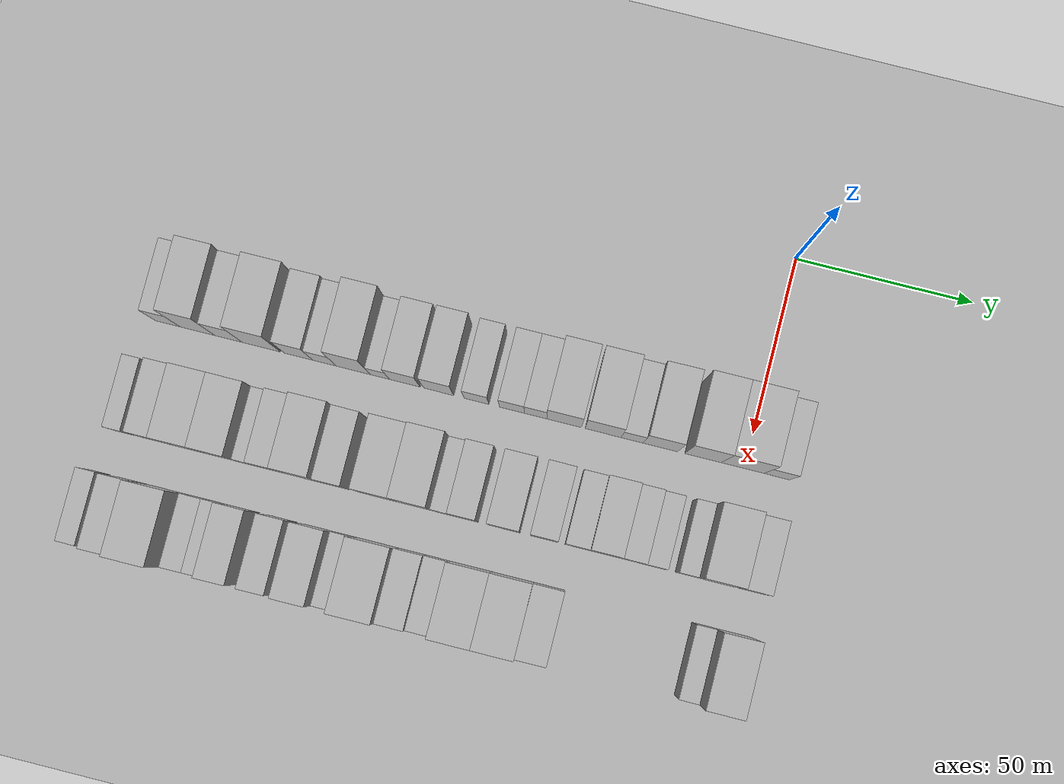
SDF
<sdf version="1.6">
 <world name="default">
  <include><name>ground_plane_1</name><uri>model://HANNAS_ground_plane</uri></include>
  <include>
   <name>ground_plane_2</name>
   <uri>model://HANNAS_ground_plane</uri>
   <pose>100 0 0  0 0 0</pose>
  </include>
  <model name="building_20">
   <static>1</static>
   <pose>50.0000 -163.0944 0 0.000000 0.000000 0.000000</pose>
   <link name="link">
    <pose>0 0 7.50 0 0 0</pose>
    <collision name="collision"><geometry><box><size>20.0000 7.1122 15.0000</size></box></geometry></collision>
    <visual name="visual">
     <cast_shadows>0</cast_shadows>
     <geometry><box><size>20.0000 7.1122 15.0000</size></box></geometry>
     <material>
      <script>
       <uri>model://HANNAS_wall/materials/scripts</uri>
       <uri>model://HANNAS_wall/materials/textures</uri>
       <name>vrc/HANNAS_wall</name>
      </script>
     </material>
    </visual>
   </link>
  </model>
  <model name="building_21">
   <static>1</static>
   <pose>50.0000 -154.5888 0 0.000000 0.000000 0.000000</pose>
   <link name="link">
    <pose>0 0 12.00 0 0 0</pose>
    <collision name="collision"><geometry><box><size>20.0000 9.8990 24.0000</size></box></geometry></collision>
    <visual name="visual">
     <cast_shadows>0</cast_shadows>
     <geometry><box><size>20.0000 9.8990 24.0000</size></box></geometry>
     <material>
      <script>
       <uri>model://HANNAS_wall/materials/scripts</uri>
       <uri>model://HANNAS_wall/materials/textures</uri>
       <name>vrc/HANNAS_wall</name>
      </script>
     </material>
    </visual>
   </link>
  </model>
  <model name="building_22">
   <static>1</static>
   <pose>50.0000 -145.7446 0 0.000000 0.000000 0.000000</pose>
   <link name="link">
    <pose>0 0 9.00 0 0 0</pose>
    <collision name="collision"><geometry><box><size>20.0000 7.7892 18.0000</size></box></geometry></collision>
    <visual name="visual">
     <cast_shadows>0</cast_shadows>
     <geometry><box><size>20.0000 7.7892 18.0000</size></box></geometry>
     <material>
      <script>
       <uri>model://HANNAS_wall/materials/scripts</uri>
       <uri>model://HANNAS_wall/materials/textures</uri>
       <name>vrc/HANNAS_wall</name>
      </script>
     </material>
    </visual>
   </link>
  </model>
  <model name="building_23">
   <static>1</static>
   <pose>50.0000 -136.4296 0 0.000000 0.000000 0.000000</pose>
   <link name="link">
    <pose>0 0 12.00 0 0 0</pose>
    <collision name="collision"><geometry><box><size>20.0000 10.8409 24.0000</size></box></geometry></collision>
    <visual name="visual">
     <cast_shadows>0</cast_shadows>
     <geometry><box><size>20.0000 10.8409 24.0000</size></box></geometry>
     <material>
      <script>
       <uri>model://HANNAS_wall/materials/scripts</uri>
       <uri>model://HANNAS_wall/materials/textures</uri>
       <name>vrc/HANNAS_wall</name>
      </script>
     </material>
    </visual>
   </link>
  </model>
  <model name="building_24">
   <static>1</static>
   <pose>50.0000 -125.9622 0 0.000000 0.000000 0.000000</pose>
   <link name="link">
    <pose>0 0 9.00 0 0 0</pose>
    <collision name="collision"><geometry><box><size>20.0000 8.0939 18.0000</size></box></geometry></collision>
    <visual name="visual">
     <cast_shadows>0</cast_shadows>
     <geometry><box><size>20.0000 8.0939 18.0000</size></box></geometry>
     <material>
      <script>
       <uri>model://HANNAS_wall/materials/scripts</uri>
       <uri>model://HANNAS_wall/materials/textures</uri>
       <name>vrc/HANNAS_wall</name>
      </script>
     </material>
    </visual>
   </link>
  </model>
  <model name="building_25">
   <static>1</static>
   <pose>50.0000 -118.5604 0 0.000000 0.000000 0.000000</pose>
   <link name="link">
    <pose>0 0 7.50 0 0 0</pose>
    <collision name="collision"><geometry><box><size>20.0000 6.7097 15.0000</size></box></geometry></collision>
    <visual name="visual">
     <cast_shadows>0</cast_shadows>
     <geometry><box><size>20.0000 6.7097 15.0000</size></box></geometry>
     <material>
      <script>
       <uri>model://HANNAS_wall/materials/scripts</uri>
       <uri>model://HANNAS_wall/materials/textures</uri>
       <name>vrc/HANNAS_wall</name>
      </script>
     </material>
    </visual>
   </link>
  </model>
  <model name="building_26">
   <static>1</static>
   <pose>50.0000 -110.4016 0 0.000000 0.000000 0.000000</pose>
   <link name="link">
    <pose>0 0 12.00 0 0 0</pose>
    <collision name="collision"><geometry><box><size>20.0000 9.6079 24.0000</size></box></geometry></collision>
    <visual name="visual">
     <cast_shadows>0</cast_shadows>
     <geometry><box><size>20.0000 9.6079 24.0000</size></box></geometry>
     <material>
      <script>
       <uri>model://HANNAS_wall/materials/scripts</uri>
       <uri>model://HANNAS_wall/materials/textures</uri>
       <name>vrc/HANNAS_wall</name>
      </script>
     </material>
    </visual>
   </link>
  </model>
  <model name="building_27">
   <static>1</static>
   <pose>50.0000 -102.8673 0 0.000000 0.000000 0.000000</pose>
   <link name="link">
    <pose>0 0 6.00 0 0 0</pose>
    <collision name="collision"><geometry><box><size>20.0000 5.4606 12.0000</size></box></geometry></collision>
    <visual name="visual">
     <cast_shadows>0</cast_shadows>
     <geometry><box><size>20.0000 5.4606 12.0000</size></box></geometry>
     <material>
      <script>
       <uri>model://HANNAS_wall/materials/scripts</uri>
       <uri>model://HANNAS_wall/materials/textures</uri>
       <name>vrc/HANNAS_wall</name>
      </script>
     </material>
    </visual>
   </link>
  </model>
  <model name="building_28">
   <static>1</static>
   <pose>50.0000 -95.7988 0 0.000000 0.000000 0.000000</pose>
   <link name="link">
    <pose>0 0 9.00 0 0 0</pose>
    <collision name="collision"><geometry><box><size>20.0000 8.6765 18.0000</size></box></geometry></collision>
    <visual name="visual">
     <cast_shadows>0</cast_shadows>
     <geometry><box><size>20.0000 8.6765 18.0000</size></box></geometry>
     <material>
      <script>
       <uri>model://HANNAS_wall/materials/scripts</uri>
       <uri>model://HANNAS_wall/materials/textures</uri>
       <name>vrc/HANNAS_wall</name>
      </script>
     </material>
    </visual>
   </link>
  </model>
  <model name="building_29">
   <static>1</static>
   <pose>50.0000 -86.2173 0 0.000000 0.000000 0.000000</pose>
   <link name="link">
    <pose>0 0 9.00 0 0 0</pose>
    <collision name="collision"><geometry><box><size>20.0000 8.4864 18.0000</size></box></geometry></collision>
    <visual name="visual">
     <cast_shadows>0</cast_shadows>
     <geometry><box><size>20.0000 8.4864 18.0000</size></box></geometry>
     <material>
      <script>
       <uri>model://HANNAS_wall/materials/scripts</uri>
       <uri>model://HANNAS_wall/materials/textures</uri>
       <name>vrc/HANNAS_wall</name>
      </script>
     </material>
    </visual>
   </link>
  </model>
  <model name="building_30">
   <static>1</static>
   <pose>50.0000 -75.5084 0 0.000000 0.000000 0.000000</pose>
   <link name="link">
    <pose>0 0 7.50 0 0 0</pose>
    <collision name="collision"><geometry><box><size>20.0000 6.9314 15.0000</size></box></geometry></collision>
    <visual name="visual">
     <cast_shadows>0</cast_shadows>
     <geometry><box><size>20.0000 6.9314 15.0000</size></box></geometry>
     <material>
      <script>
       <uri>model://HANNAS_wall/materials/scripts</uri>
       <uri>model://HANNAS_wall/materials/textures</uri>
       <name>vrc/HANNAS_wall</name>
      </script>
     </material>
    </visual>
   </link>
  </model>
  <model name="building_31">
   <static>1</static>
   <pose>50.0000 -65.5238 0 0.000000 0.000000 0.000000</pose>
   <link name="link">
    <pose>0 0 7.50 0 0 0</pose>
    <collision name="collision"><geometry><box><size>20.0000 7.0378 15.0000</size></box></geometry></collision>
    <visual name="visual">
     <cast_shadows>0</cast_shadows>
     <geometry><box><size>20.0000 7.0378 15.0000</size></box></geometry>
     <material>
      <script>
       <uri>model://HANNAS_wall/materials/scripts</uri>
       <uri>model://HANNAS_wall/materials/textures</uri>
       <name>vrc/HANNAS_wall</name>
      </script>
     </material>
    </visual>
   </link>
  </model>
  <model name="building_32">
   <static>1</static>
   <pose>50.0000 -58.8244 0 0.000000 0.000000 0.000000</pose>
   <link name="link">
    <pose>0 0 7.50 0 0 0</pose>
    <collision name="collision"><geometry><box><size>20.0000 6.3609 15.0000</size></box></geometry></collision>
    <visual name="visual">
     <cast_shadows>0</cast_shadows>
     <geometry><box><size>20.0000 6.3609 15.0000</size></box></geometry>
     <material>
      <script>
       <uri>model://HANNAS_wall/materials/scripts</uri>
       <uri>model://HANNAS_wall/materials/textures</uri>
       <name>vrc/HANNAS_wall</name>
      </script>
     </material>
    </visual>
   </link>
  </model>
  <model name="building_33">
   <static>1</static>
   <pose>50.0000 -50.7950 0 0.000000 0.000000 0.000000</pose>
   <link name="link">
    <pose>0 0 10.50 0 0 0</pose>
    <collision name="collision"><geometry><box><size>20.0000 9.6981 21.0000</size></box></geometry></collision>
    <visual name="visual">
     <cast_shadows>0</cast_shadows>
     <geometry><box><size>20.0000 9.6981 21.0000</size></box></geometry>
     <material>
      <script>
       <uri>model://HANNAS_wall/materials/scripts</uri>
       <uri>model://HANNAS_wall/materials/textures</uri>
       <name>vrc/HANNAS_wall</name>
      </script>
     </material>
    </visual>
   </link>
  </model>
  <model name="building_34">
   <static>1</static>
   <pose>50.0000 -39.8899 0 0.000000 0.000000 0.000000</pose>
   <link name="link">
    <pose>0 0 10.50 0 0 0</pose>
    <collision name="collision"><geometry><box><size>20.0000 10.1120 21.0000</size></box></geometry></collision>
    <visual name="visual">
     <cast_shadows>0</cast_shadows>
     <geometry><box><size>20.0000 10.1120 21.0000</size></box></geometry>
     <material>
      <script>
       <uri>model://HANNAS_wall/materials/scripts</uri>
       <uri>model://HANNAS_wall/materials/textures</uri>
       <name>vrc/HANNAS_wall</name>
      </script>
     </material>
    </visual>
   </link>
  </model>
  <model name="building_35">
   <static>1</static>
   <pose>50.0000 -31.7334 0 0.000000 0.000000 0.000000</pose>
   <link name="link">
    <pose>0 0 7.50 0 0 0</pose>
    <collision name="collision"><geometry><box><size>20.0000 6.2009 15.0000</size></box></geometry></collision>
    <visual name="visual">
     <cast_shadows>0</cast_shadows>
     <geometry><box><size>20.0000 6.2009 15.0000</size></box></geometry>
     <material>
      <script>
       <uri>model://HANNAS_wall/materials/scripts</uri>
       <uri>model://HANNAS_wall/materials/textures</uri>
       <name>vrc/HANNAS_wall</name>
      </script>
     </material>
    </visual>
   </link>
  </model>
  <model name="building_36">
   <static>1</static>
   <pose>50.0000 -23.7923 0 0.000000 0.000000 0.000000</pose>
   <link name="link">
    <pose>0 0 10.50 0 0 0</pose>
    <collision name="collision"><geometry><box><size>20.0000 9.6813 21.0000</size></box></geometry></collision>
    <visual name="visual">
     <cast_shadows>0</cast_shadows>
     <geometry><box><size>20.0000 9.6813 21.0000</size></box></geometry>
     <material>
      <script>
       <uri>model://HANNAS_wall/materials/scripts</uri>
       <uri>model://HANNAS_wall/materials/textures</uri>
       <name>vrc/HANNAS_wall</name>
      </script>
     </material>
    </visual>
   </link>
  </model>
  <model name="building_37">
   <static>1</static>
   <pose>50.0000 -11.8276 0 0.000000 0.000000 0.000000</pose>
   <link name="link">
    <pose>0 0 12.00 0 0 0</pose>
    <collision name="collision"><geometry><box><size>20.0000 10.2482 24.0000</size></box></geometry></collision>
    <visual name="visual">
     <cast_shadows>0</cast_shadows>
     <geometry><box><size>20.0000 10.2482 24.0000</size></box></geometry>
     <material>
      <script>
       <uri>model://HANNAS_wall/materials/scripts</uri>
       <uri>model://HANNAS_wall/materials/textures</uri>
       <name>vrc/HANNAS_wall</name>
      </script>
     </material>
    </visual>
   </link>
  </model>
  <model name="building_38">
   <static>1</static>
   <pose>50.0000 -0.7172 0 0.000000 0.000000 0.000000</pose>
   <link name="link">
    <pose>0 0 12.00 0 0 0</pose>
    <collision name="collision"><geometry><box><size>20.0000 11.9725 24.0000</size></box></geometry></collision>
    <visual name="visual">
     <cast_shadows>0</cast_shadows>
     <geometry><box><size>20.0000 11.9725 24.0000</size></box></geometry>
     <material>
      <script>
       <uri>model://HANNAS_wall/materials/scripts</uri>
       <uri>model://HANNAS_wall/materials/textures</uri>
       <name>vrc/HANNAS_wall</name>
      </script>
     </material>
    </visual>
   </link>
  </model>
  <model name="building_39">
   <static>1</static>
   <pose>50.0000 8.8545 0 0.000000 0.000000 0.000000</pose>
   <link name="link">
    <pose>0 0 7.50 0 0 0</pose>
    <collision name="collision"><geometry><box><size>20.0000 7.1708 15.0000</size></box></geometry></collision>
    <visual name="visual">
     <cast_shadows>0</cast_shadows>
     <geometry><box><size>20.0000 7.1708 15.0000</size></box></geometry>
     <material>
      <script>
       <uri>model://HANNAS_wall/materials/scripts</uri>
       <uri>model://HANNAS_wall/materials/textures</uri>
       <name>vrc/HANNAS_wall</name>
      </script>
     </material>
    </visual>
   </link>
  </model>
  <model name="building_100">
   <static>1</static>
   <pose>82.0000 -166.3859 0 0.000000 0.000000 0.000000</pose>
   <link name="link">
    <pose>0 0 6.00 0 0 0</pose>
    <collision name="collision"><geometry><box><size>20.0000 4.9880 12.0000</size></box></geometry></collision>
    <visual name="visual">
     <cast_shadows>0</cast_shadows>
     <geometry><box><size>20.0000 4.9880 12.0000</size></box></geometry>
     <material>
      <script>
       <uri>model://HANNAS_wall/materials/scripts</uri>
       <uri>model://HANNAS_wall/materials/textures</uri>
       <name>vrc/HANNAS_wall</name>
      </script>
     </material>
    </visual>
   </link>
  </model>
  <model name="building_101">
   <static>1</static>
   <pose>82.0000 -157.2213 0 0.000000 0.000000 0.000000</pose>
   <link name="link">
    <pose>0 0 9.00 0 0 0</pose>
    <collision name="collision"><geometry><box><size>20.0000 7.3413 18.0000</size></box></geometry></collision>
    <visual name="visual">
     <cast_shadows>0</cast_shadows>
     <geometry><box><size>20.0000 7.3413 18.0000</size></box></geometry>
     <material>
      <script>
       <uri>model://HANNAS_wall/materials/scripts</uri>
       <uri>model://HANNAS_wall/materials/textures</uri>
       <name>vrc/HANNAS_wall</name>
      </script>
     </material>
    </visual>
   </link>
  </model>
  <model name="building_102">
   <static>1</static>
   <pose>82.0000 -148.4470 0 0.000000 0.000000 0.000000</pose>
   <link name="link">
    <pose>0 0 10.50 0 0 0</pose>
    <collision name="collision"><geometry><box><size>20.0000 10.2073 21.0000</size></box></geometry></collision>
    <visual name="visual">
     <cast_shadows>0</cast_shadows>
     <geometry><box><size>20.0000 10.2073 21.0000</size></box></geometry>
     <material>
      <script>
       <uri>model://HANNAS_wall/materials/scripts</uri>
       <uri>model://HANNAS_wall/materials/textures</uri>
       <name>vrc/HANNAS_wall</name>
      </script>
     </material>
    </visual>
   </link>
  </model>
  <model name="building_103">
   <static>1</static>
   <pose>82.0000 -138.4168 0 0.000000 0.000000 0.000000</pose>
   <link name="link">
    <pose>0 0 10.50 0 0 0</pose>
    <collision name="collision"><geometry><box><size>20.0000 9.8531 21.0000</size></box></geometry></collision>
    <visual name="visual">
     <cast_shadows>0</cast_shadows>
     <geometry><box><size>20.0000 9.8531 21.0000</size></box></geometry>
     <material>
      <script>
       <uri>model://HANNAS_wall/materials/scripts</uri>
       <uri>model://HANNAS_wall/materials/textures</uri>
       <name>vrc/HANNAS_wall</name>
      </script>
     </material>
    </visual>
   </link>
  </model>
  <model name="building_104">
   <static>1</static>
   <pose>82.0000 -130.9757 0 0.000000 0.000000 0.000000</pose>
   <link name="link">
    <pose>0 0 6.00 0 0 0</pose>
    <collision name="collision"><geometry><box><size>20.0000 5.0292 12.0000</size></box></geometry></collision>
    <visual name="visual">
     <cast_shadows>0</cast_shadows>
     <geometry><box><size>20.0000 5.0292 12.0000</size></box></geometry>
     <material>
      <script>
       <uri>model://HANNAS_wall/materials/scripts</uri>
       <uri>model://HANNAS_wall/materials/textures</uri>
       <name>vrc/HANNAS_wall</name>
      </script>
     </material>
    </visual>
   </link>
  </model>
  <model name="building_105">
   <static>1</static>
   <pose>82.0000 -124.6152 0 0.000000 0.000000 0.000000</pose>
   <link name="link">
    <pose>0 0 9.00 0 0 0</pose>
    <collision name="collision"><geometry><box><size>20.0000 7.6916 18.0000</size></box></geometry></collision>
    <visual name="visual">
     <cast_shadows>0</cast_shadows>
     <geometry><box><size>20.0000 7.6916 18.0000</size></box></geometry>
     <material>
      <script>
       <uri>model://HANNAS_wall/materials/scripts</uri>
       <uri>model://HANNAS_wall/materials/textures</uri>
       <name>vrc/HANNAS_wall</name>
      </script>
     </material>
    </visual>
   </link>
  </model>
  <model name="building_106">
   <static>1</static>
   <pose>82.0000 -115.6666 0 0.000000 0.000000 0.000000</pose>
   <link name="link">
    <pose>0 0 12.00 0 0 0</pose>
    <collision name="collision"><geometry><box><size>20.0000 10.2057 24.0000</size></box></geometry></collision>
    <visual name="visual">
     <cast_shadows>0</cast_shadows>
     <geometry><box><size>20.0000 10.2057 24.0000</size></box></geometry>
     <material>
      <script>
       <uri>model://HANNAS_wall/materials/scripts</uri>
       <uri>model://HANNAS_wall/materials/textures</uri>
       <name>vrc/HANNAS_wall</name>
      </script>
     </material>
    </visual>
   </link>
  </model>
  <model name="building_107">
   <static>1</static>
   <pose>82.0000 -106.7495 0 0.000000 0.000000 0.000000</pose>
   <link name="link">
    <pose>0 0 9.00 0 0 0</pose>
    <collision name="collision"><geometry><box><size>20.0000 7.6286 18.0000</size></box></geometry></collision>
    <visual name="visual">
     <cast_shadows>0</cast_shadows>
     <geometry><box><size>20.0000 7.6286 18.0000</size></box></geometry>
     <material>
      <script>
       <uri>model://HANNAS_wall/materials/scripts</uri>
       <uri>model://HANNAS_wall/materials/textures</uri>
       <name>vrc/HANNAS_wall</name>
      </script>
     </material>
    </visual>
   </link>
  </model>
  <model name="building_108">
   <static>1</static>
   <pose>82.0000 -94.7574 0 0.000000 0.000000 0.000000</pose>
   <link name="link">
    <pose>0 0 10.50 0 0 0</pose>
    <collision name="collision"><geometry><box><size>20.0000 10.3556 21.0000</size></box></geometry></collision>
    <visual name="visual">
     <cast_shadows>0</cast_shadows>
     <geometry><box><size>20.0000 10.3556 21.0000</size></box></geometry>
     <material>
      <script>
       <uri>model://HANNAS_wall/materials/scripts</uri>
       <uri>model://HANNAS_wall/materials/textures</uri>
       <name>vrc/HANNAS_wall</name>
      </script>
     </material>
    </visual>
   </link>
  </model>
  <model name="building_109">
   <static>1</static>
   <pose>82.0000 -84.5386 0 0.000000 0.000000 0.000000</pose>
   <link name="link">
    <pose>0 0 12.00 0 0 0</pose>
    <collision name="collision"><geometry><box><size>20.0000 10.0819 24.0000</size></box></geometry></collision>
    <visual name="visual">
     <cast_shadows>0</cast_shadows>
     <geometry><box><size>20.0000 10.0819 24.0000</size></box></geometry>
     <material>
      <script>
       <uri>model://HANNAS_wall/materials/scripts</uri>
       <uri>model://HANNAS_wall/materials/textures</uri>
       <name>vrc/HANNAS_wall</name>
      </script>
     </material>
    </visual>
   </link>
  </model>
  <model name="building_110">
   <static>1</static>
   <pose>82.0000 -76.9883 0 0.000000 0.000000 0.000000</pose>
   <link name="link">
    <pose>0 0 6.00 0 0 0</pose>
    <collision name="collision"><geometry><box><size>20.0000 5.0187 12.0000</size></box></geometry></collision>
    <visual name="visual">
     <cast_shadows>0</cast_shadows>
     <geometry><box><size>20.0000 5.0187 12.0000</size></box></geometry>
     <material>
      <script>
       <uri>model://HANNAS_wall/materials/scripts</uri>
       <uri>model://HANNAS_wall/materials/textures</uri>
       <name>vrc/HANNAS_wall</name>
      </script>
     </material>
    </visual>
   </link>
  </model>
  <model name="building_111">
   <static>1</static>
   <pose>82.0000 -70.6773 0 0.000000 0.000000 0.000000</pose>
   <link name="link">
    <pose>0 0 9.00 0 0 0</pose>
    <collision name="collision"><geometry><box><size>20.0000 7.6033 18.0000</size></box></geometry></collision>
    <visual name="visual">
     <cast_shadows>0</cast_shadows>
     <geometry><box><size>20.0000 7.6033 18.0000</size></box></geometry>
     <material>
      <script>
       <uri>model://HANNAS_wall/materials/scripts</uri>
       <uri>model://HANNAS_wall/materials/textures</uri>
       <name>vrc/HANNAS_wall</name>
      </script>
     </material>
    </visual>
   </link>
  </model>
  <model name="building_112">
   <static>1</static>
   <pose>82.0000 -59.5124 0 0.000000 0.000000 0.000000</pose>
   <link name="link">
    <pose>0 0 9.00 0 0 0</pose>
    <collision name="collision"><geometry><box><size>20.0000 8.7265 18.0000</size></box></geometry></collision>
    <visual name="visual">
     <cast_shadows>0</cast_shadows>
     <geometry><box><size>20.0000 8.7265 18.0000</size></box></geometry>
     <material>
      <script>
       <uri>model://HANNAS_wall/materials/scripts</uri>
       <uri>model://HANNAS_wall/materials/textures</uri>
       <name>vrc/HANNAS_wall</name>
      </script>
     </material>
    </visual>
   </link>
  </model>
  <model name="building_113">
   <static>1</static>
   <pose>82.0000 -48.3867 0 0.000000 0.000000 0.000000</pose>
   <link name="link">
    <pose>0 0 9.00 0 0 0</pose>
    <collision name="collision"><geometry><box><size>20.0000 7.5249 18.0000</size></box></geometry></collision>
    <visual name="visual">
     <cast_shadows>0</cast_shadows>
     <geometry><box><size>20.0000 7.5249 18.0000</size></box></geometry>
     <material>
      <script>
       <uri>model://HANNAS_wall/materials/scripts</uri>
       <uri>model://HANNAS_wall/materials/textures</uri>
       <name>vrc/HANNAS_wall</name>
      </script>
     </material>
    </visual>
   </link>
  </model>
  <model name="building_114">
   <static>1</static>
   <pose>82.0000 -39.2723 0 0.000000 0.000000 0.000000</pose>
   <link name="link">
    <pose>0 0 7.50 0 0 0</pose>
    <collision name="collision"><geometry><box><size>20.0000 6.7040 15.0000</size></box></geometry></collision>
    <visual name="visual">
     <cast_shadows>0</cast_shadows>
     <geometry><box><size>20.0000 6.7040 15.0000</size></box></geometry>
     <material>
      <script>
       <uri>model://HANNAS_wall/materials/scripts</uri>
       <uri>model://HANNAS_wall/materials/textures</uri>
       <name>vrc/HANNAS_wall</name>
      </script>
     </material>
    </visual>
   </link>
  </model>
  <model name="building_115">
   <static>1</static>
   <pose>82.0000 -31.5607 0 0.000000 0.000000 0.000000</pose>
   <link name="link">
    <pose>0 0 9.00 0 0 0</pose>
    <collision name="collision"><geometry><box><size>20.0000 8.7190 18.0000</size></box></geometry></collision>
    <visual name="visual">
     <cast_shadows>0</cast_shadows>
     <geometry><box><size>20.0000 8.7190 18.0000</size></box></geometry>
     <material>
      <script>
       <uri>model://HANNAS_wall/materials/scripts</uri>
       <uri>model://HANNAS_wall/materials/textures</uri>
       <name>vrc/HANNAS_wall</name>
      </script>
     </material>
    </visual>
   </link>
  </model>
  <model name="building_116">
   <static>1</static>
   <pose>82.0000 -23.9363 0 0.000000 0.000000 0.000000</pose>
   <link name="link">
    <pose>0 0 7.50 0 0 0</pose>
    <collision name="collision"><geometry><box><size>20.0000 6.5299 15.0000</size></box></geometry></collision>
    <visual name="visual">
     <cast_shadows>0</cast_shadows>
     <geometry><box><size>20.0000 6.5299 15.0000</size></box></geometry>
     <material>
      <script>
       <uri>model://HANNAS_wall/materials/scripts</uri>
       <uri>model://HANNAS_wall/materials/textures</uri>
       <name>vrc/HANNAS_wall</name>
      </script>
     </material>
    </visual>
   </link>
  </model>
  <model name="building_117">
   <static>1</static>
   <pose>82.0000 -17.7520 0 0.000000 0.000000 0.000000</pose>
   <link name="link">
    <pose>0 0 6.00 0 0 0</pose>
    <collision name="collision"><geometry><box><size>20.0000 5.8386 12.0000</size></box></geometry></collision>
    <visual name="visual">
     <cast_shadows>0</cast_shadows>
     <geometry><box><size>20.0000 5.8386 12.0000</size></box></geometry>
     <material>
      <script>
       <uri>model://HANNAS_wall/materials/scripts</uri>
       <uri>model://HANNAS_wall/materials/textures</uri>
       <name>vrc/HANNAS_wall</name>
      </script>
     </material>
    </visual>
   </link>
  </model>
  <model name="building_118">
   <static>1</static>
   <pose>82.0000 -9.1561 0 0.000000 0.000000 0.000000</pose>
   <link name="link">
    <pose>0 0 6.00 0 0 0</pose>
    <collision name="collision"><geometry><box><size>20.0000 5.3532 12.0000</size></box></geometry></collision>
    <visual name="visual">
     <cast_shadows>0</cast_shadows>
     <geometry><box><size>20.0000 5.3532 12.0000</size></box></geometry>
     <material>
      <script>
       <uri>model://HANNAS_wall/materials/scripts</uri>
       <uri>model://HANNAS_wall/materials/textures</uri>
       <name>vrc/HANNAS_wall</name>
      </script>
     </material>
    </visual>
   </link>
  </model>
  <model name="building_119">
   <static>1</static>
   <pose>82.0000 -0.9947 0 0.000000 0.000000 0.000000</pose>
   <link name="link">
    <pose>0 0 12.00 0 0 0</pose>
    <collision name="collision"><geometry><box><size>20.0000 10.9696 24.0000</size></box></geometry></collision>
    <visual name="visual">
     <cast_shadows>0</cast_shadows>
     <geometry><box><size>20.0000 10.9696 24.0000</size></box></geometry>
     <material>
      <script>
       <uri>model://HANNAS_wall/materials/scripts</uri>
       <uri>model://HANNAS_wall/materials/textures</uri>
       <name>vrc/HANNAS_wall</name>
      </script>
     </material>
    </visual>
   </link>
  </model>
  <model name="building_120">
   <static>1</static>
   <pose>82.0000 9.1610 0 0.000000 0.000000 0.000000</pose>
   <link name="link">
    <pose>0 0 7.50 0 0 0</pose>
    <collision name="collision"><geometry><box><size>20.0000 7.3420 15.0000</size></box></geometry></collision>
    <visual name="visual">
     <cast_shadows>0</cast_shadows>
     <geometry><box><size>20.0000 7.3420 15.0000</size></box></geometry>
     <material>
      <script>
       <uri>model://HANNAS_wall/materials/scripts</uri>
       <uri>model://HANNAS_wall/materials/textures</uri>
       <name>vrc/HANNAS_wall</name>
      </script>
     </material>
    </visual>
   </link>
  </model>
  <model name="building_178">
   <static>1</static>
   <pose>114.0000 -170.0366 0 0.000000 0.000000 0.000000</pose>
   <link name="link">
    <pose>0 0 6.00 0 0 0</pose>
    <collision name="collision"><geometry><box><size>20.0000 5.4059 12.0000</size></box></geometry></collision>
    <visual name="visual">
     <cast_shadows>0</cast_shadows>
     <geometry><box><size>20.0000 5.4059 12.0000</size></box></geometry>
     <material>
      <script>
       <uri>model://HANNAS_wall/materials/scripts</uri>
       <uri>model://HANNAS_wall/materials/textures</uri>
       <name>vrc/HANNAS_wall</name>
      </script>
     </material>
    </visual>
   </link>
  </model>
  <model name="building_179">
   <static>1</static>
   <pose>114.0000 -160.6220 0 0.000000 0.000000 0.000000</pose>
   <link name="link">
    <pose>0 0 9.00 0 0 0</pose>
    <collision name="collision"><geometry><box><size>20.0000 7.4232 18.0000</size></box></geometry></collision>
    <visual name="visual">
     <cast_shadows>0</cast_shadows>
     <geometry><box><size>20.0000 7.4232 18.0000</size></box></geometry>
     <material>
      <script>
       <uri>model://HANNAS_wall/materials/scripts</uri>
       <uri>model://HANNAS_wall/materials/textures</uri>
       <name>vrc/HANNAS_wall</name>
      </script>
     </material>
    </visual>
   </link>
  </model>
  <model name="building_180">
   <static>1</static>
   <pose>114.0000 -150.1737 0 0.000000 0.000000 0.000000</pose>
   <link name="link">
    <pose>0 0 12.00 0 0 0</pose>
    <collision name="collision"><geometry><box><size>20.0000 11.4735 24.0000</size></box></geometry></collision>
    <visual name="visual">
     <cast_shadows>0</cast_shadows>
     <geometry><box><size>20.0000 11.4735 24.0000</size></box></geometry>
     <material>
      <script>
       <uri>model://HANNAS_wall/materials/scripts</uri>
       <uri>model://HANNAS_wall/materials/textures</uri>
       <name>vrc/HANNAS_wall</name>
      </script>
     </material>
    </visual>
   </link>
  </model>
  <model name="building_181">
   <static>1</static>
   <pose>114.0000 -141.4542 0 0.000000 0.000000 0.000000</pose>
   <link name="link">
    <pose>0 0 6.00 0 0 0</pose>
    <collision name="collision"><geometry><box><size>20.0000 5.9656 12.0000</size></box></geometry></collision>
    <visual name="visual">
     <cast_shadows>0</cast_shadows>
     <geometry><box><size>20.0000 5.9656 12.0000</size></box></geometry>
     <material>
      <script>
       <uri>model://HANNAS_wall/materials/scripts</uri>
       <uri>model://HANNAS_wall/materials/textures</uri>
       <name>vrc/HANNAS_wall</name>
      </script>
     </material>
    </visual>
   </link>
  </model>
  <model name="building_182">
   <static>1</static>
   <pose>114.0000 -136.0299 0 0.000000 0.000000 0.000000</pose>
   <link name="link">
    <pose>0 0 6.00 0 0 0</pose>
    <collision name="collision"><geometry><box><size>20.0000 4.8829 12.0000</size></box></geometry></collision>
    <visual name="visual">
     <cast_shadows>0</cast_shadows>
     <geometry><box><size>20.0000 4.8829 12.0000</size></box></geometry>
     <material>
      <script>
       <uri>model://HANNAS_wall/materials/scripts</uri>
       <uri>model://HANNAS_wall/materials/textures</uri>
       <name>vrc/HANNAS_wall</name>
      </script>
     </material>
    </visual>
   </link>
  </model>
  <model name="building_183">
   <static>1</static>
   <pose>114.0000 -129.3581 0 0.000000 0.000000 0.000000</pose>
   <link name="link">
    <pose>0 0 9.00 0 0 0</pose>
    <collision name="collision"><geometry><box><size>20.0000 8.4605 18.0000</size></box></geometry></collision>
    <visual name="visual">
     <cast_shadows>0</cast_shadows>
     <geometry><box><size>20.0000 8.4605 18.0000</size></box></geometry>
     <material>
      <script>
       <uri>model://HANNAS_wall/materials/scripts</uri>
       <uri>model://HANNAS_wall/materials/textures</uri>
       <name>vrc/HANNAS_wall</name>
      </script>
     </material>
    </visual>
   </link>
  </model>
  <model name="building_184">
   <static>1</static>
   <pose>114.0000 -118.3744 0 0.000000 0.000000 0.000000</pose>
   <link name="link">
    <pose>0 0 9.00 0 0 0</pose>
    <collision name="collision"><geometry><box><size>20.0000 7.5069 18.0000</size></box></geometry></collision>
    <visual name="visual">
     <cast_shadows>0</cast_shadows>
     <geometry><box><size>20.0000 7.5069 18.0000</size></box></geometry>
     <material>
      <script>
       <uri>model://HANNAS_wall/materials/scripts</uri>
       <uri>model://HANNAS_wall/materials/textures</uri>
       <name>vrc/HANNAS_wall</name>
      </script>
     </material>
    </visual>
   </link>
  </model>
  <model name="building_185">
   <static>1</static>
   <pose>114.0000 -107.9869 0 0.000000 0.000000 0.000000</pose>
   <link name="link">
    <pose>0 0 10.50 0 0 0</pose>
    <collision name="collision"><geometry><box><size>20.0000 9.2681 21.0000</size></box></geometry></collision>
    <visual name="visual">
     <cast_shadows>0</cast_shadows>
     <geometry><box><size>20.0000 9.2681 21.0000</size></box></geometry>
     <material>
      <script>
       <uri>model://HANNAS_wall/materials/scripts</uri>
       <uri>model://HANNAS_wall/materials/textures</uri>
       <name>vrc/HANNAS_wall</name>
      </script>
     </material>
    </visual>
   </link>
  </model>
  <model name="building_186">
   <static>1</static>
   <pose>114.0000 -100.3848 0 0.000000 0.000000 0.000000</pose>
   <link name="link">
    <pose>0 0 6.00 0 0 0</pose>
    <collision name="collision"><geometry><box><size>20.0000 5.9361 12.0000</size></box></geometry></collision>
    <visual name="visual">
     <cast_shadows>0</cast_shadows>
     <geometry><box><size>20.0000 5.9361 12.0000</size></box></geometry>
     <material>
      <script>
       <uri>model://HANNAS_wall/materials/scripts</uri>
       <uri>model://HANNAS_wall/materials/textures</uri>
       <name>vrc/HANNAS_wall</name>
      </script>
     </material>
    </visual>
   </link>
  </model>
  <model name="building_187">
   <static>1</static>
   <pose>114.0000 -91.4766 0 0.000000 0.000000 0.000000</pose>
   <link name="link">
    <pose>0 0 12.00 0 0 0</pose>
    <collision name="collision"><geometry><box><size>20.0000 11.8805 24.0000</size></box></geometry></collision>
    <visual name="visual">
     <cast_shadows>0</cast_shadows>
     <geometry><box><size>20.0000 11.8805 24.0000</size></box></geometry>
     <material>
      <script>
       <uri>model://HANNAS_wall/materials/scripts</uri>
       <uri>model://HANNAS_wall/materials/textures</uri>
       <name>vrc/HANNAS_wall</name>
      </script>
     </material>
    </visual>
   </link>
  </model>
  <model name="building_188">
   <static>1</static>
   <pose>114.0000 -81.6095 0 0.000000 0.000000 0.000000</pose>
   <link name="link">
    <pose>0 0 9.00 0 0 0</pose>
    <collision name="collision"><geometry><box><size>20.0000 7.8537 18.0000</size></box></geometry></collision>
    <visual name="visual">
     <cast_shadows>0</cast_shadows>
     <geometry><box><size>20.0000 7.8537 18.0000</size></box></geometry>
     <material>
      <script>
       <uri>model://HANNAS_wall/materials/scripts</uri>
       <uri>model://HANNAS_wall/materials/textures</uri>
       <name>vrc/HANNAS_wall</name>
      </script>
     </material>
    </visual>
   </link>
  </model>
  <model name="building_189">
   <static>1</static>
   <pose>114.0000 -74.4076 0 0.000000 0.000000 0.000000</pose>
   <link name="link">
    <pose>0 0 7.50 0 0 0</pose>
    <collision name="collision"><geometry><box><size>20.0000 6.5500 15.0000</size></box></geometry></collision>
    <visual name="visual">
     <cast_shadows>0</cast_shadows>
     <geometry><box><size>20.0000 6.5500 15.0000</size></box></geometry>
     <material>
      <script>
       <uri>model://HANNAS_wall/materials/scripts</uri>
       <uri>model://HANNAS_wall/materials/textures</uri>
       <name>vrc/HANNAS_wall</name>
      </script>
     </material>
    </visual>
   </link>
  </model>
  <model name="building_190">
   <static>1</static>
   <pose>114.0000 -65.4065 0 0.000000 0.000000 0.000000</pose>
   <link name="link">
    <pose>0 0 12.00 0 0 0</pose>
    <collision name="collision"><geometry><box><size>20.0000 11.4522 24.0000</size></box></geometry></collision>
    <visual name="visual">
     <cast_shadows>0</cast_shadows>
     <geometry><box><size>20.0000 11.4522 24.0000</size></box></geometry>
     <material>
      <script>
       <uri>model://HANNAS_wall/materials/scripts</uri>
       <uri>model://HANNAS_wall/materials/textures</uri>
       <name>vrc/HANNAS_wall</name>
      </script>
     </material>
    </visual>
   </link>
  </model>
  <model name="building_191">
   <static>1</static>
   <pose>114.0000 -54.0024 0 0.000000 0.000000 0.000000</pose>
   <link name="link">
    <pose>0 0 12.00 0 0 0</pose>
    <collision name="collision"><geometry><box><size>20.0000 11.3559 24.0000</size></box></geometry></collision>
    <visual name="visual">
     <cast_shadows>0</cast_shadows>
     <geometry><box><size>20.0000 11.3559 24.0000</size></box></geometry>
     <material>
      <script>
       <uri>model://HANNAS_wall/materials/scripts</uri>
       <uri>model://HANNAS_wall/materials/textures</uri>
       <name>vrc/HANNAS_wall</name>
      </script>
     </material>
    </visual>
   </link>
  </model>
  <model name="building_192">
   <static>1</static>
   <pose>114.0000 -44.0721 0 0.000000 0.000000 0.000000</pose>
   <link name="link">
    <pose>0 0 9.00 0 0 0</pose>
    <collision name="collision"><geometry><box><size>20.0000 8.5048 18.0000</size></box></geometry></collision>
    <visual name="visual">
     <cast_shadows>0</cast_shadows>
     <geometry><box><size>20.0000 8.5048 18.0000</size></box></geometry>
     <material>
      <script>
       <uri>model://HANNAS_wall/materials/scripts</uri>
       <uri>model://HANNAS_wall/materials/textures</uri>
       <name>vrc/HANNAS_wall</name>
      </script>
     </material>
    </visual>
   </link>
  </model>
  <model name="building_193">
   <static>1</static>
   <pose>114.0000 -1.4545 0 0.000000 0.000000 0.000000</pose>
   <link name="link">
    <pose>0 0 6.00 0 0 0</pose>
    <collision name="collision"><geometry><box><size>20.0000 5.5768 12.0000</size></box></geometry></collision>
    <visual name="visual">
     <cast_shadows>0</cast_shadows>
     <geometry><box><size>20.0000 5.5768 12.0000</size></box></geometry>
     <material>
      <script>
       <uri>model://HANNAS_wall/materials/scripts</uri>
       <uri>model://HANNAS_wall/materials/textures</uri>
       <name>vrc/HANNAS_wall</name>
      </script>
     </material>
    </visual>
   </link>
  </model>
  <model name="building_194">
   <static>1</static>
   <pose>114.0000 6.5219 0 0.000000 0.000000 0.000000</pose>
   <link name="link">
    <pose>0 0 12.00 0 0 0</pose>
    <collision name="collision"><geometry><box><size>20.0000 10.3761 24.0000</size></box></geometry></collision>
    <visual name="visual">
     <cast_shadows>0</cast_shadows>
     <geometry><box><size>20.0000 10.3761 24.0000</size></box></geometry>
     <material>
      <script>
       <uri>model://HANNAS_wall/materials/scripts</uri>
       <uri>model://HANNAS_wall/materials/textures</uri>
       <name>vrc/HANNAS_wall</name>
      </script>
     </material>
    </visual>
   </link>
  </model>
 </world>
</sdf>
